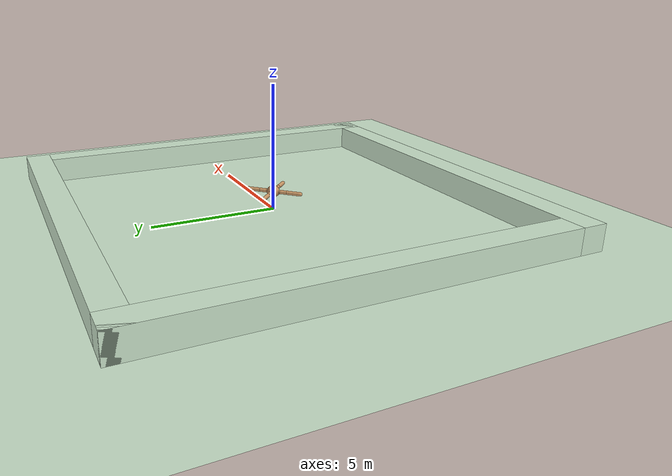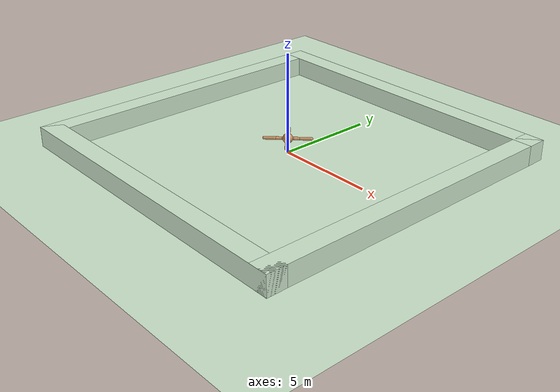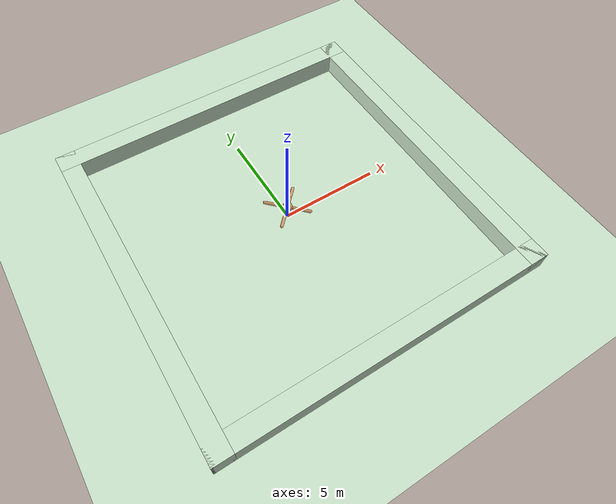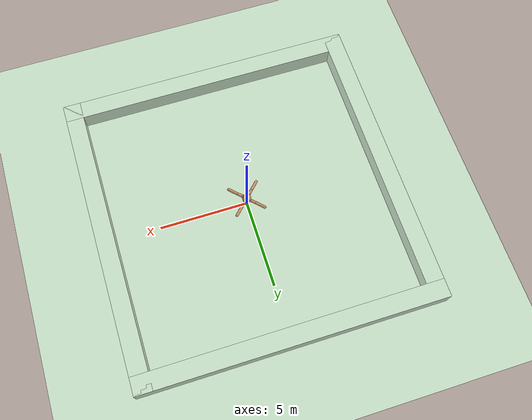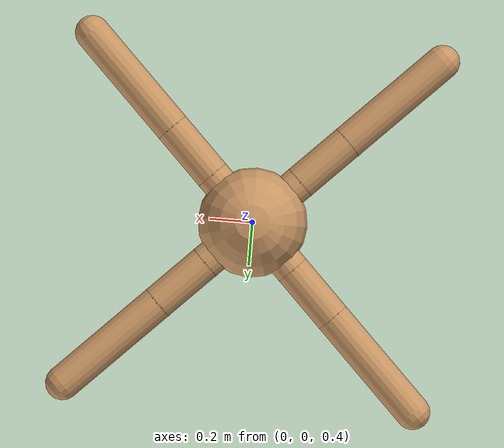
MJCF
<mujoco model="ant">
  <compiler inertiafromgeom="true" angle="degree" coordinate="local" />
  <custom>
    <numeric name="frame_skip" data="10" />
  </custom>
  <option timestep="0.002" integrator="RK4" />
  <default>
    <joint limited="true" armature="0.2" damping="0.1" />
    <geom condim="3" conaffinity="0" margin="0.1" friction="1 0.5 0.5" rgba="0.8 0.6 0.4 1" density="100.0" />
  </default>
  <asset>
    <material name='trans_geom' />
    <texture name="groundplane" type="2d" builtin="checker" width="200" height="10" />
    <material name="MatGnd" texture="groundplane" texscale="1 .6" specular="1" shininess="1" reflectance="0.00001" />
  </asset>
  <worldbody>
    <light directional="true" cutoff="100" exponent="1" diffuse="1 1 1" specular=".1 .1 .1" pos="0 0 1.3" dir="-0 0 -1.3" />
    <geom name='floor' material="MatGnd" pos='0 0 0' size='40 40 40' type='plane' conaffinity='1' rgba='0.8 0.9 0.8 1' condim='3' />
    <geom name='wall1' pos='0 -8 0' size='8.5 0.5 1' type='box' conaffinity='1' rgba='0.8 0.9 0.8 1' condim='3' />
    <geom name='wall2' pos='0 8 0' size='8.5 0.5 1' type='box' conaffinity='1' rgba='0.8 0.9 0.8 1' condim='3' />
    <geom name='wall3' pos='-8 0 0' size='0.5 8.5 1' type='box' conaffinity='1' rgba='0.8 0.9 0.8 1' condim='3' />
    <geom name='wall4' pos='8 0 0' size='0.5 8.5 1' type='box' conaffinity='1' rgba='0.8 0.9 0.8 1' condim='3' />
    <body name="torso" pos="0 0.0 0.75">
      <geom name="torso_geom" type="sphere" size="0.25" pos="0 0 0" />
      <joint name="root" type="free" limited="false" pos="0 0 0" axis="0 0 1" margin="0.01" armature="0" damping="0" />
      <body name="front_left_leg" pos="0 0 0">
        <geom name="aux_1_geom" type="capsule" size="0.08" fromto="0.0 0.0 0.0 0.2 0.2 0.0" />
        <body name="aux_1" pos="0.2 0.2 0">
          <joint name="hip_1" type="hinge" pos="0.0 0.0 0.0" axis="0 0 1" range="-30 30" />
          <geom name="left_leg_geom" type="capsule" size="0.08" fromto="0.0 0.0 0.0 0.2 0.2 0.0" />
          <body pos="0.2 0.2 0">
            <joint name="ankle_1" type="hinge" pos="0.0 0.0 0.0" axis="-1 1 0" range="30 70" />
            <geom name="left_ankle_geom" type="capsule" size="0.08" fromto="0.0 0.0 0.0 0.4 0.4 0.0" />
          </body>
        </body>
      </body>
      <body name="front_right_leg" pos="0 0 0">
        <geom name="aux_2_geom" type="capsule" size="0.08" fromto="0.0 0.0 0.0 -0.2 0.2 0.0" />
        <body name="aux_2" pos="-0.2 0.2 0">
          <joint name="hip_2" type="hinge" pos="0.0 0.0 0.0" axis="0 0 1" range="-30 30" />
          <geom name="right_leg_geom" type="capsule" size="0.08" fromto="0.0 0.0 0.0 -0.2 0.2 0.0" />
          <body pos="-0.2 0.2 0">
            <joint name="ankle_2" type="hinge" pos="0.0 0.0 0.0" axis="1 1 0" range="-70 -30" />
            <geom name="right_ankle_geom" type="capsule" size="0.08" fromto="0.0 0.0 0.0 -0.4 0.4 0.0" />
          </body>
        </body>
      </body>
      <body name="back_leg" pos="0 0 0">
        <geom name="aux_3_geom" type="capsule" size="0.08" fromto="0.0 0.0 0.0 -0.2 -0.2 0.0" />
        <body name="aux_3" pos="-0.2 -0.2 0">
          <joint name="hip_3" type="hinge" pos="0.0 0.0 0.0" axis="0 0 1" range="-30 30" />
          <geom name="back_leg_geom" type="capsule" size="0.08" fromto="0.0 0.0 0.0 -0.2 -0.2 0.0" />
          <body pos="-0.2 -0.2 0">
            <joint name="ankle_3" type="hinge" pos="0.0 0.0 0.0" axis="-1 1 0" range="-70 -30" />
            <geom name="third_ankle_geom" type="capsule" size="0.08" fromto="0.0 0.0 0.0 -0.4 -0.4 0.0" />
          </body>
        </body>
      </body>
      <body name="right_back_leg" pos="0 0 0">
        <geom name="aux_4_geom" type="capsule" size="0.08" fromto="0.0 0.0 0.0 0.2 -0.2 0.0" />
        <body name="aux_4" pos="0.2 -0.2 0">
          <joint name="hip_4" type="hinge" pos="0.0 0.0 0.0" axis="0 0 1" range="-30 30" />
          <geom name="rightback_leg_geom" type="capsule" size="0.08" fromto="0.0 0.0 0.0 0.2 -0.2 0.0" />
          <body pos="0.2 -0.2 0">
            <joint name="ankle_4" type="hinge" pos="0.0 0.0 0.0" axis="1 1 0" range="30 70" />
            <geom name="fourth_ankle_geom" type="capsule" size="0.08" fromto="0.0 0.0 0.0 0.4 -0.4 0.0" />
          </body>
        </body>
      </body>
    </body>
  </worldbody>
  <actuator>
    <motor joint="hip_4" ctrlrange="-150.0 150.0" ctrllimited="true" />
    <motor joint="ankle_4" ctrlrange="-150.0 150.0" ctrllimited="true" />
    <motor joint="hip_1" ctrlrange="-150.0 150.0" ctrllimited="true" />
    <motor joint="ankle_1" ctrlrange="-150.0 150.0" ctrllimited="true" />
    <motor joint="hip_2" ctrlrange="-150.0 150.0" ctrllimited="true" />
    <motor joint="ankle_2" ctrlrange="-150.0 150.0" ctrllimited="true" />
    <motor joint="hip_3" ctrlrange="-150.0 150.0" ctrllimited="true" />
    <motor joint="ankle_3" ctrlrange="-150.0 150.0" ctrllimited="true" />
  </actuator>
</mujoco>
